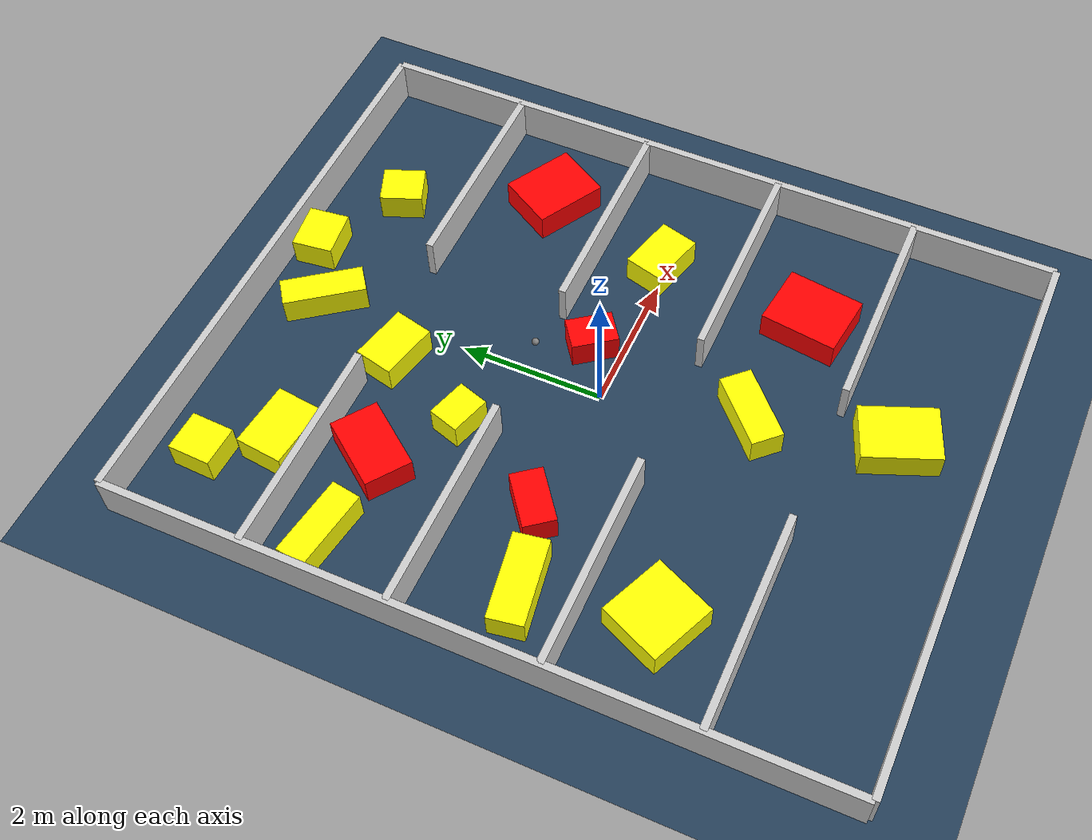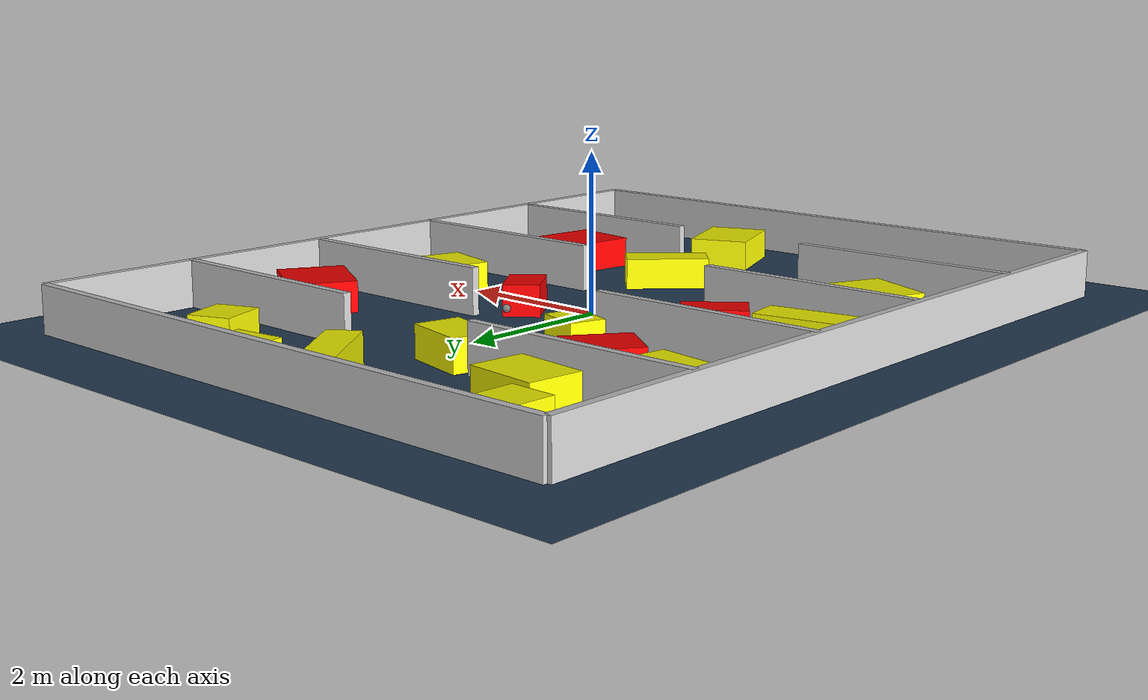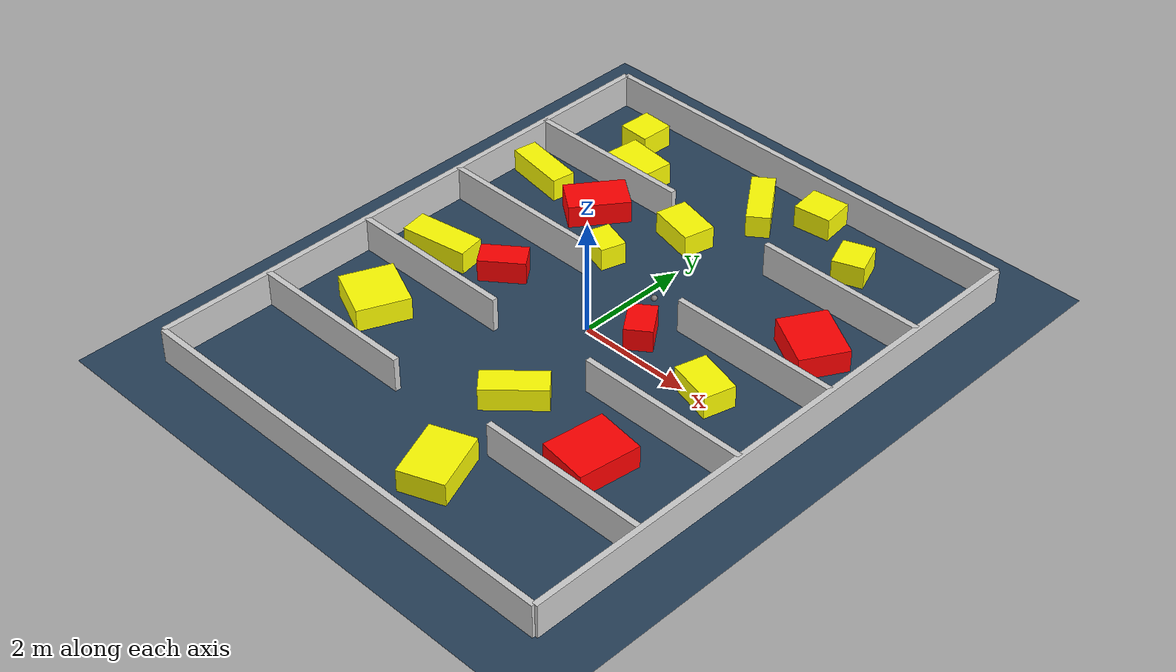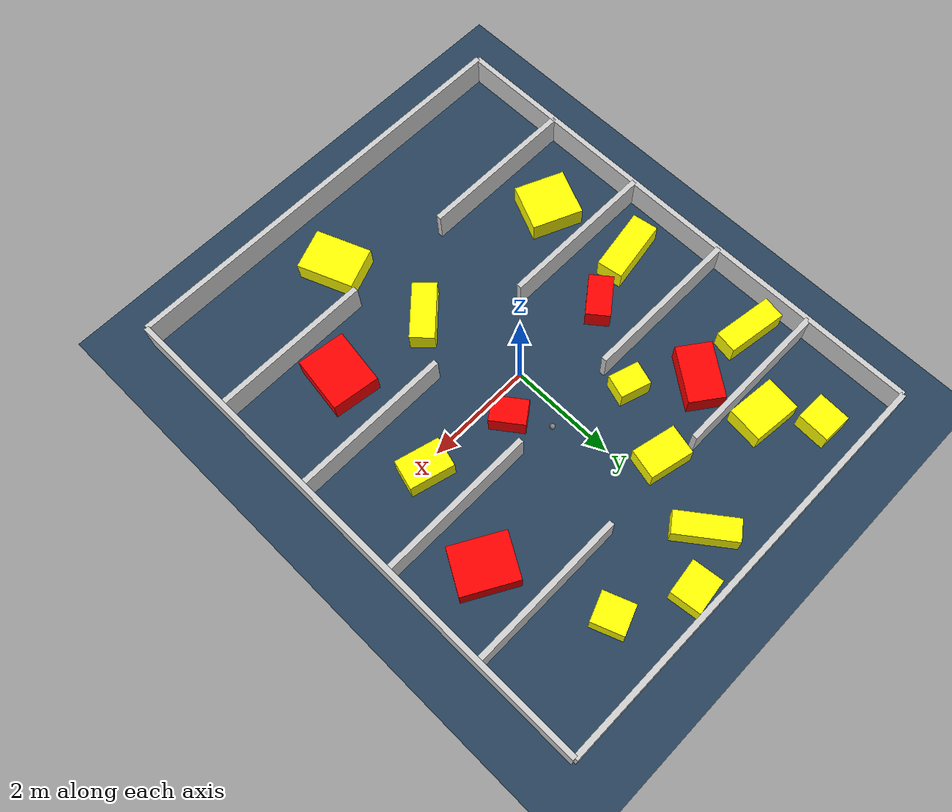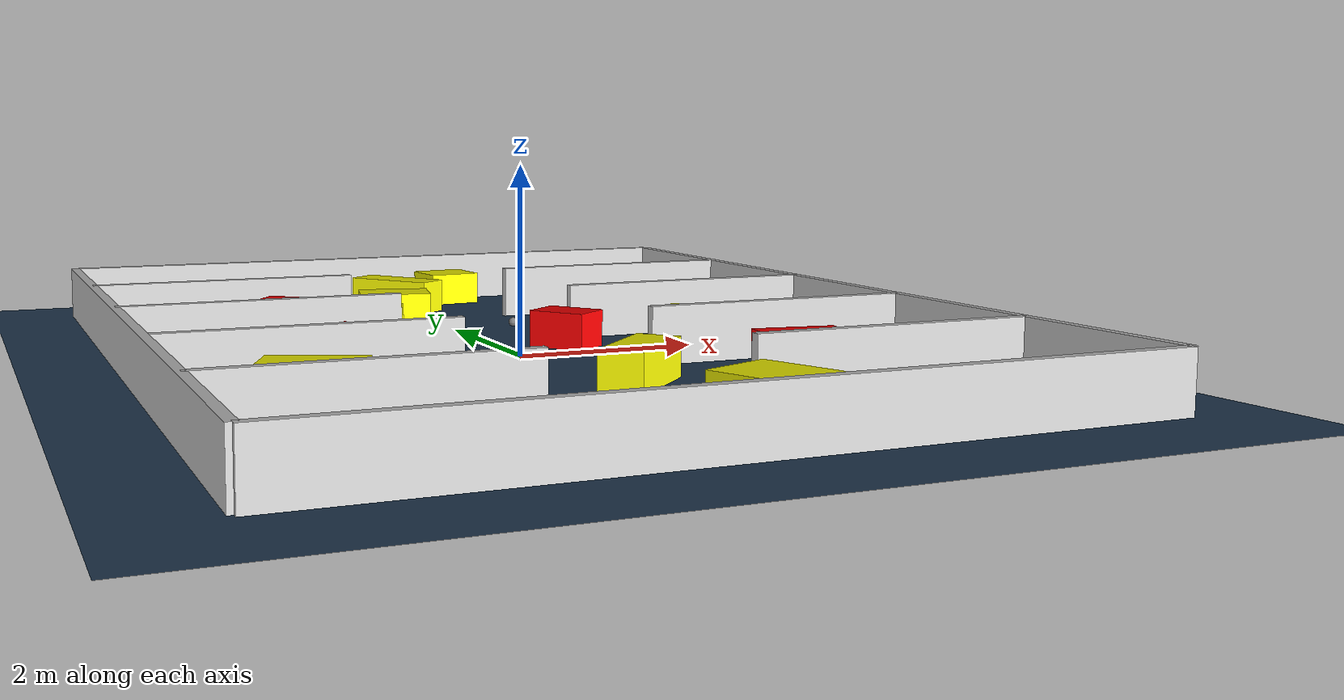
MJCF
<?xml version="1.0" ?>
<mujoco model="generated_environment">
  <option timestep="0.01" integrator="RK4" cone="elliptic"/>
  <default>
    <geom density="1"/>
  </default>
  <asset>
    <texture builtin="gradient" height="3072" rgb1="0.3 0.5 0.7" rgb2="0 0 0" type="skybox" width="512"/>
    <texture builtin="checker" height="300" mark="edge" markrgb="0.8 0.8 0.8" name="groundplane" rgb1="0.2 0.3 0.4" rgb2="0.1 0.2 0.3" type="2d" width="300"/>
    <material name="groundplane" reflectance="0.2" texrepeat="5 5" texture="groundplane" texuniform="true"/>
    <material name="robot" rgba="0.0 1.0 0.0 1"/>
  </asset>
  <worldbody>
    <light dir="0 0 -1" directional="true" pos="0 0 1.5"/>
    <geom condim="4" friction="1.0 0.005 0.001" material="groundplane" name="floor" size="0 0 0.05" type="plane"/>
    <body name="walls">
      <geom name="wall_1" condim="4" pos="-4.0 0.0 0.3" rgba="0.800000011920929 0.800000011920929 0.800000011920929 1.0" size="0.05 5.0 0.3" type="box"/>
      <geom name="wall_2" condim="4" pos="4.0 0.0 0.3" rgba="0.800000011920929 0.800000011920929 0.800000011920929 1.0" size="0.05 5.0 0.3" type="box"/>
      <geom name="wall_3" condim="4" pos="0.0 -5.0 0.3" rgba="0.800000011920929 0.800000011920929 0.800000011920929 1.0" size="4.0 0.05 0.3" type="box"/>
      <geom name="wall_4" condim="4" pos="0.0 5.0 0.3" rgba="0.800000011920929 0.800000011920929 0.800000011920929 1.0" size="4.0 0.05 0.3" type="box"/>
      <geom name="wall_5" condim="4" pos="-2.5 -3.0 0.3" rgba="0.800000011920929 0.800000011920929 0.800000011920929 1.0" size="1.5 0.05 0.3" type="box"/>
      <geom name="wall_6" condim="4" pos="2.5 -3.0 0.3" rgba="0.800000011920929 0.800000011920929 0.800000011920929 1.0" size="1.5 0.05 0.3" type="box"/>
      <geom name="wall_7" condim="4" pos="-2.5 -1.0 0.3" rgba="0.800000011920929 0.800000011920929 0.800000011920929 1.0" size="1.5 0.05 0.3" type="box"/>
      <geom name="wall_8" condim="4" pos="2.5 -1.0 0.3" rgba="0.800000011920929 0.800000011920929 0.800000011920929 1.0" size="1.5 0.05 0.3" type="box"/>
      <geom name="wall_9" condim="4" pos="-2.5 1.0 0.3" rgba="0.800000011920929 0.800000011920929 0.800000011920929 1.0" size="1.5 0.05 0.3" type="box"/>
      <geom name="wall_10" condim="4" pos="2.5 1.0 0.3" rgba="0.800000011920929 0.800000011920929 0.800000011920929 1.0" size="1.5 0.05 0.3" type="box"/>
      <geom name="wall_11" condim="4" pos="-2.5 3.0 0.3" rgba="0.800000011920929 0.800000011920929 0.800000011920929 1.0" size="1.5 0.05 0.3" type="box"/>
      <geom name="wall_12" condim="4" pos="2.5 3.0 0.3" rgba="0.800000011920929 0.800000011920929 0.800000011920929 1.0" size="1.5 0.05 0.3" type="box"/>
    </body>
    <body name="robot">
      <joint name="joint_x" type="slide" pos="0 0 0" axis="1 0 0"/>
      <joint name="joint_y" type="slide" pos="0 0 0" axis="0 1 0"/>
      <geom name="robot" type="sphere" pos="0.3617470292914211 1.1079136200358572 0.2" size="0.05" mass="5." friction="1.0 0.005 0.0001" condim="4"/>
      <site name="sensor_ball"/>
    </body>
    <body name="obstacle_1_static">
      <geom name="obstacle_1_static" condim="4" pos="2.2137803127954028 -2.150710451281404 0.2" euler="0 0 352.32002861935314" friction="1.0 0.005 0.001" rgba="1 0 0 1" size="0.44357452102507533 0.5358329840574432 0.2" type="box"/>
    </body>
    <body name="obstacle_2_movable">
      <geom name="obstacle_2_movable" condim="4" pos="2.346239040839325 0.09954643192233359 0.2" euler="0 0 74.75456647468629" friction="1.0 0.005 0.001" rgba="1 1 0 1" size="0.27838312964835177 0.4130628226042128 0.2" type="box" mass="0.1"/>
      <joint type="free"/>
    </body>
    <body name="obstacle_3_static">
      <geom name="obstacle_3_static" condim="4" pos="-2.046576189374973 2.2750204293610103 0.2" euler="0 0 323.6585498084443" friction="1.0 0.005 0.001" rgba="1 0 0 1" size="0.3293012229632776 0.5242298133722514 0.2" type="box"/>
    </body>
    <body name="obstacle_4_movable">
      <geom name="obstacle_4_movable" condim="4" pos="-2.8527274068709674 4.286755739429675 0.2" euler="0 0 177.75122376093304" friction="1.0 0.005 0.001" rgba="1 1 0 1" size="0.28330269297648775 0.29864857573922443 0.2" type="box" mass="0.1"/>
      <joint type="free"/>
    </body>
    <body name="obstacle_5_movable">
      <geom name="obstacle_5_movable" condim="4" pos="-3.3258351627076284 2.308825585346601 0.2" euler="0 0 261.1623247951408" friction="1.0 0.005 0.001" rgba="1 1 0 1" size="0.20868044454931367 0.5639896191675752 0.2" type="box" mass="0.1"/>
      <joint type="free"/>
    </body>
    <body name="obstacle_6_movable">
      <geom name="obstacle_6_movable" condim="4" pos="2.005983824399379 3.964045986635285 0.2" euler="0 0 20.998246250848705" friction="1.0 0.005 0.001" rgba="1 1 0 1" size="0.27364911085313054 0.29722610550237455 0.2" type="box" mass="0.1"/>
      <joint type="free"/>
    </body>
    <body name="obstacle_7_static">
      <geom name="obstacle_7_static" condim="4" pos="0.7152425392977562 0.43370599700588564 0.2" euler="0 0 306.22579767590076" friction="1.0 0.005 0.001" rgba="1 0 0 1" size="0.32212700198435096 0.23201312914401195 0.2" type="box"/>
    </body>
    <body name="obstacle_8_movable">
      <geom name="obstacle_8_movable" condim="4" pos="-3.0289523907256237 -0.26069034815099545 0.2" euler="0 0 9.376396545027248" friction="1.0 0.005 0.001" rgba="1 1 0 1" size="0.5980597691693603 0.243703305848396 0.2" type="box" mass="0.1"/>
      <joint type="free"/>
    </body>
    <body name="obstacle_9_static">
      <geom name="obstacle_9_static" condim="4" pos="2.8503997674369184 1.967940574055234 0.2" euler="0 0 60.173239035707866" friction="1.0 0.005 0.001" rgba="1 0 0 1" size="0.4241013918868028 0.5158069481843892 0.2" type="box"/>
    </body>
    <body name="obstacle_10_movable">
      <geom name="obstacle_10_movable" condim="4" pos="0.7996226522905832 -3.8229160098803403 0.2" euler="0 0 21.40861088308156" friction="1.0 0.005 0.001" rgba="1 1 0 1" size="0.39221162423088496 0.5321349176306216 0.2" type="box" mass="0.1"/>
      <joint type="free"/>
    </body>
    <body name="obstacle_11_movable">
      <geom name="obstacle_11_movable" condim="4" pos="0.7922583684758147 4.620026735625759 0.2" euler="0 0 186.86843216713834" friction="1.0 0.005 0.001" rgba="1 1 0 1" size="0.330157834147209 0.2879158581440841 0.2" type="box" mass="0.1"/>
      <joint type="free"/>
    </body>
    <body name="obstacle_12_static">
      <geom name="obstacle_12_static" condim="4" pos="-1.9399067978796116 0.05956453719471444 0.2" euler="0 0 217.81208633352463" friction="1.0 0.005 0.001" rgba="1 0 0 1" size="0.3929607486593307 0.22388150145611002 0.2" type="box"/>
    </body>
    <body name="obstacle_13_movable">
      <geom name="obstacle_13_movable" condim="4" pos="-0.5223474533879919 2.763040160833981 0.2" euler="0 0 76.79746460887509" friction="1.0 0.005 0.001" rgba="1 1 0 1" size="0.27801372439526084 0.41473662688738044 0.2" type="box" mass="0.1"/>
      <joint type="free"/>
    </body>
    <body name="obstacle_14_movable">
      <geom name="obstacle_14_movable" condim="4" pos="-2.269867171019727 3.480006770989678 0.2" euler="0 0 353.70888895414" friction="1.0 0.005 0.001" rgba="1 1 0 1" size="0.45625983417059096 0.3308418919186351 0.2" type="box" mass="0.1"/>
      <joint type="free"/>
    </body>
    <body name="obstacle_15_movable">
      <geom name="obstacle_15_movable" condim="4" pos="-2.7366522886401343 -1.9371479889532557 0.2" euler="0 0 246.39030785366816" friction="1.0 0.005 0.001" rgba="1 1 0 1" size="0.4527226654279006 0.47763684526148276 0.2" type="box" mass="0.1"/>
      <joint type="free"/>
    </body>
    <body name="obstacle_16_movable">
      <geom name="obstacle_16_movable" condim="4" pos="0.41088415510601495 -1.9454167242647533 0.2" euler="0 0 133.5499313809791" friction="1.0 0.005 0.001" rgba="1 1 0 1" size="0.2255571437940966 0.5370378924429112 0.2" type="box" mass="0.1"/>
      <joint type="free"/>
    </body>
    <body name="obstacle_17_movable">
      <geom name="obstacle_17_movable" condim="4" pos="-1.1075314885744794 1.5105527507914491 0.2" euler="0 0 252.63742863935005" friction="1.0 0.005 0.001" rgba="1 1 0 1" size="0.22194500226679126 0.28804261601102377 0.2" type="box" mass="0.1"/>
      <joint type="free"/>
    </body>
    <body name="obstacle_18_movable">
      <geom name="obstacle_18_movable" condim="4" pos="-0.06319120592765914 4.100029231800766 0.2" euler="0 0 36.460451706920516" friction="1.0 0.005 0.001" rgba="1 1 0 1" size="0.2021215922433932 0.5679738113217198 0.2" type="box" mass="0.1"/>
      <joint type="free"/>
    </body>
  </worldbody>
  <actuator>
    <motor name="actuator_x" joint="joint_x" gear="1" ctrlrange="-1 1"/>
    <motor name="actuator_y" joint="joint_y" gear="1" ctrlrange="-1 1"/>
  </actuator>
</mujoco>
